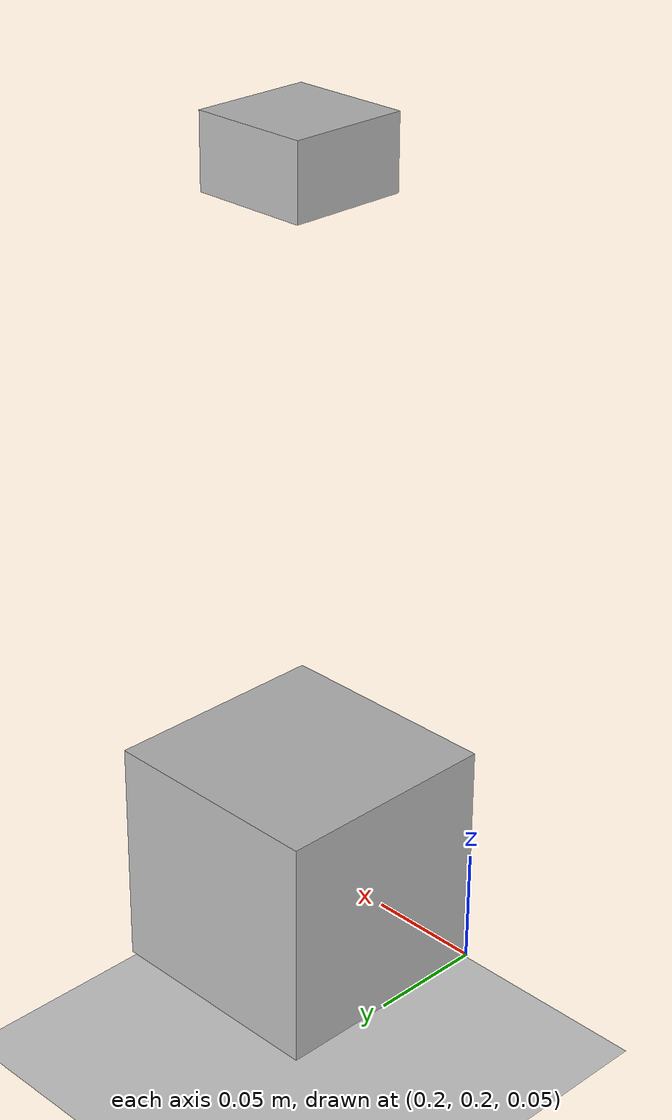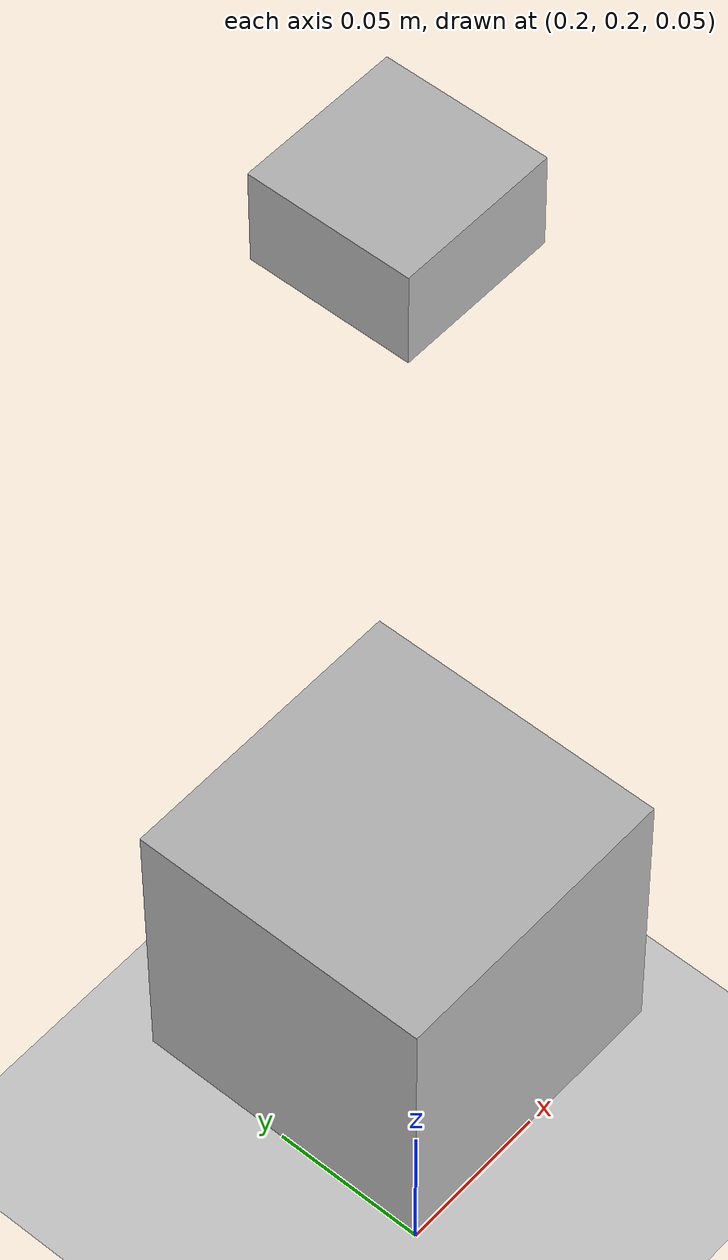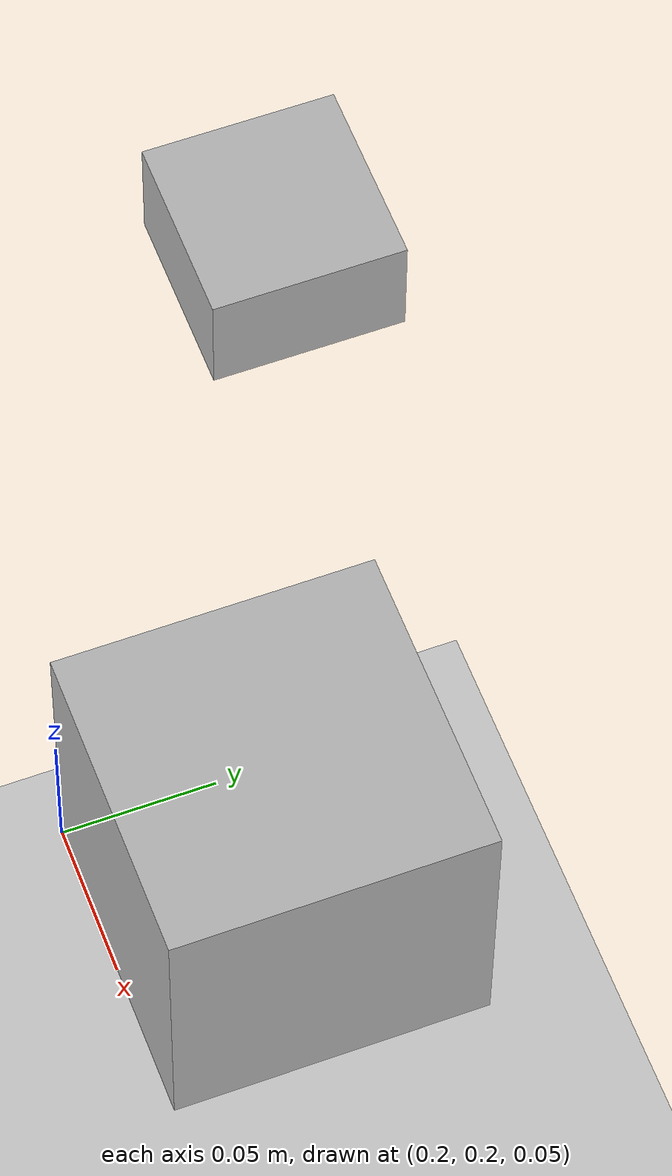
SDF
<sdf version="1.4">
  <world name="default">
    <!-- A global light source -->
    <include>
      <uri>model://sun</uri>
    </include>

    <!-- A ground plane -->
    <include>
      <uri>model://ground_plane</uri>
    </include>

	<model name="camera">
    <link name="camera_link">
      <pose>0.25 0.25 0.4 0 1.57 0</pose>
      <inertial>
        <mass>0.1</mass>
      </inertial>
      <collision name="collision">
        <geometry>
          <box>
            <size>0.03 0.05 0.05</size>
          </box>
        </geometry>
      </collision>
      <visual name="visual">
        <geometry>
          <box>
            <size>0.03 0.05 0.05</size>
          </box>
        </geometry>
      </visual>
      <sensor type="camera" name="camera1">
      <update_rate>30.0</update_rate>
      <camera name="head">
        <horizontal_fov>1.3962634</horizontal_fov>
        <image>
          <width>800</width>
          <height>800</height>
          <format>R8G8B8</format>
        </image>
        <clip>
          <near>0.02</near>
          <far>300</far>
        </clip>
        <noise>
          <type>gaussian</type>
          <!-- Noise is sampled independently per pixel on each frame.
               That pixel's noise value is added to each of its color
               channels, which at that point lie in the range [0,1]. -->
          <mean>0.0</mean>
          <stddev>0.007</stddev>
        </noise>
      </camera>
      <plugin name="camera_controller" filename="libgazebo_ros_camera.so">
        <alwaysOn>true</alwaysOn>
        <updateRate>0.0</updateRate>
        <cameraName>rrbot/camera1</cameraName>
        <imageTopicName>image_raw</imageTopicName>
        <cameraInfoTopicName>camera_info</cameraInfoTopicName>
        <frameName>camera_link</frameName>
        <hackBaseline>0.07</hackBaseline>
        <distortionK1>0.0</distortionK1>
        <distortionK2>0.0</distortionK2>
        <distortionK3>0.0</distortionK3>
        <distortionT1>0.0</distortionT1>
        <distortionT2>0.0</distortionT2>
      </plugin>
    </sensor>
    </link>
  </model>

  <model name="box">
    <link name="box_link">
      <pose>0.25 0.25 0.1 0 0 0</pose>
      <inertial>
        <mass>0.1</mass>
      </inertial>
      <collision name="collision">
        <geometry>
          <box>
            <size>0.1 0.1 0.1</size>
          </box>
        </geometry>
      </collision>
      <visual name="visual">
        <geometry>
          <box>
            <size>0.1 0.1 0.1</size>
          </box>
        </geometry>
      </visual>
    </link>
  </model>

    <physics type="ode">
      <real_time_update_rate>1000.0</real_time_update_rate>
      <max_step_size>0.001</max_step_size>
      <real_time_factor>1</real_time_factor>
      <ode>
        <solver>
          <type>quick</type>
          <iters>150</iters>
          <precon_iters>0</precon_iters>
          <sor>1.400000</sor>
          <use_dynamic_moi_rescaling>1</use_dynamic_moi_rescaling>
        </solver>
        <constraints>
          <cfm>0.00001</cfm>
          <erp>0.2</erp>
          <contact_max_correcting_vel>2000.000000</contact_max_correcting_vel>
          <contact_surface_layer>0.01000</contact_surface_layer>
        </constraints>
      </ode>
    </physics>

    <scene>
      <ambient>0.4 0.4 0.4 1</ambient>
      <background>0.7 0.7 0.7 1</background>
      <shadows>true</shadows>
    </scene>

    <gui fullscreen='0'>
      <camera name='user_camera'>
        <pose> 2.0 -2.0 1.2 0.0 0.275643 2.356190 </pose>
        <view_controller>orbit</view_controller>
      </camera>
    </gui>

  </world>
</sdf>
